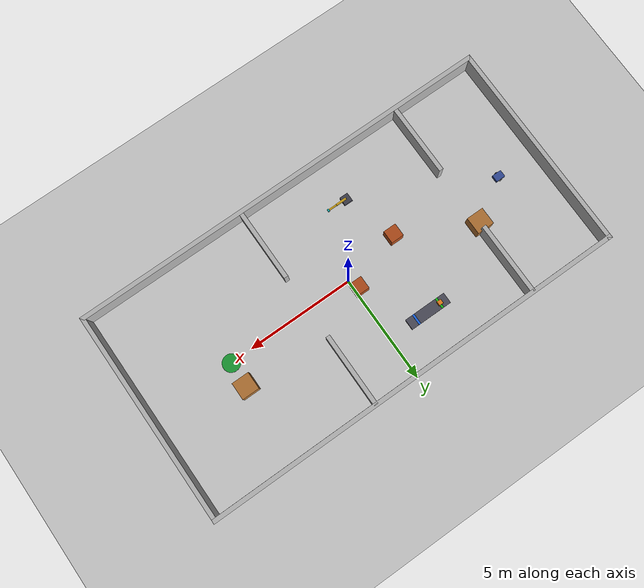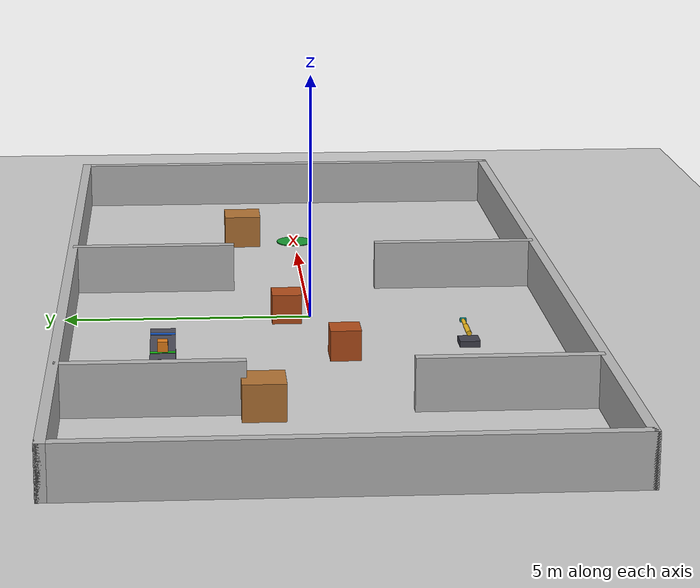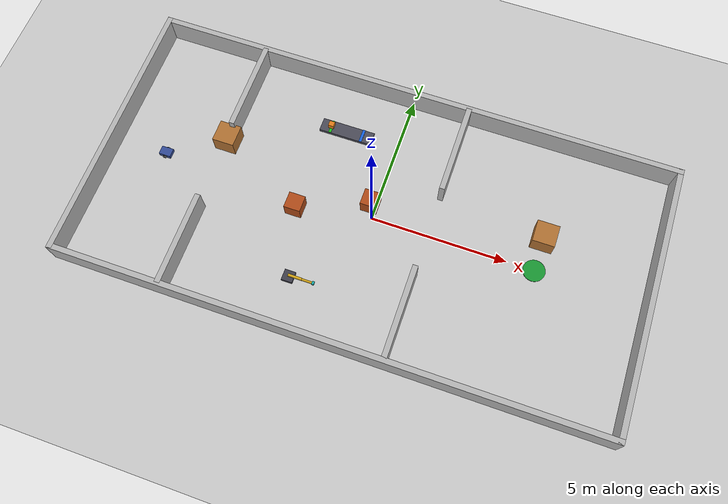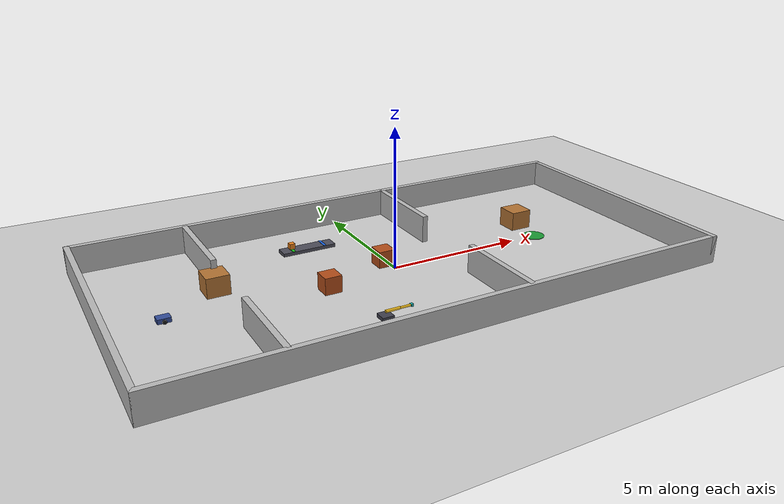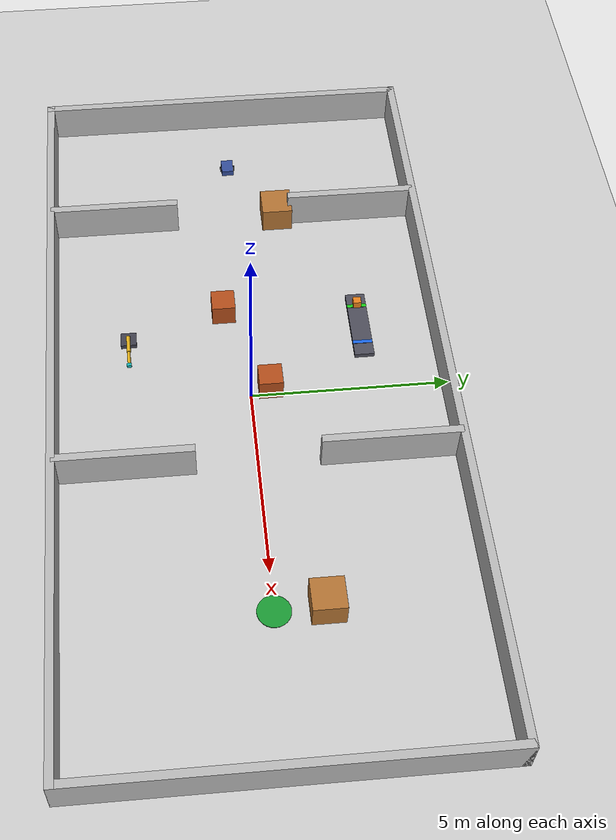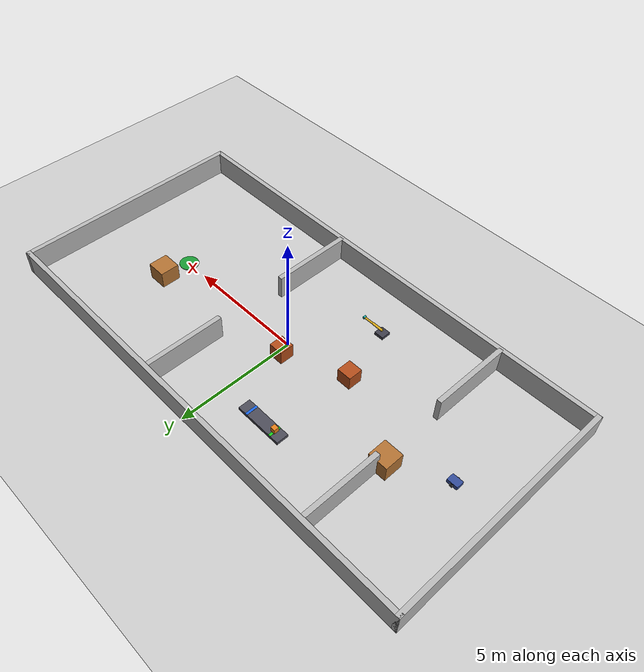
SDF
<?xml version="1.0" ?>
<sdf version="1.10">
  <world name="kern_workspace">
    <physics name="1ms" type="ignored">
      <max_step_size>0.001</max_step_size>
      <real_time_factor>1.0</real_time_factor>
    </physics>

    <plugin filename="gz-sim-physics-system" name="gz::sim::systems::Physics"/>
    <plugin filename="gz-sim-user-commands-system" name="gz::sim::systems::UserCommands"/>
    <plugin filename="gz-sim-scene-broadcaster-system" name="gz::sim::systems::SceneBroadcaster"/>
    <plugin filename="gz-sim-sensors-system" name="gz::sim::systems::Sensors">
      <render_engine>ogre2</render_engine>
    </plugin>

    <light type="directional" name="sun">
      <cast_shadows>true</cast_shadows>
      <pose>0 0 10 0 0 0</pose>
      <diffuse>0.8 0.8 0.8 1</diffuse>
      <specular>0.2 0.2 0.2 1</specular>
      <direction>-0.5 0.1 -0.9</direction>
    </light>

    <model name="ground_plane">
      <static>true</static>
      <link name="link">
        <collision name="collision">
          <geometry><plane><normal>0 0 1</normal><size>100 100</size></plane></geometry>
        </collision>
        <visual name="visual">
          <geometry><plane><normal>0 0 1</normal><size>100 100</size></plane></geometry>
          <material>
            <ambient>0.8 0.8 0.8 1</ambient>
            <diffuse>0.8 0.8 0.8 1</diffuse>
          </material>
        </visual>
      </link>
    </model>

    <!-- Perimeter. Each wall is 0.2 m thick and 1 m tall. -->
    <model name="wall_south">
      <static>true</static>
      <pose>0 -4.9 0.5 0 0 0</pose>
      <link name="link">
        <collision name="collision"><geometry><box><size>20 0.2 1</size></box></geometry></collision>
        <visual name="visual"><geometry><box><size>20 0.2 1</size></box></geometry></visual>
      </link>
    </model>
    <model name="wall_north">
      <static>true</static>
      <pose>0 4.9 0.5 0 0 0</pose>
      <link name="link">
        <collision name="collision"><geometry><box><size>20 0.2 1</size></box></geometry></collision>
        <visual name="visual"><geometry><box><size>20 0.2 1</size></box></geometry></visual>
      </link>
    </model>
    <model name="wall_west">
      <static>true</static>
      <pose>-9.9 0 0.5 0 0 0</pose>
      <link name="link">
        <collision name="collision"><geometry><box><size>0.2 10 1</size></box></geometry></collision>
        <visual name="visual"><geometry><box><size>0.2 10 1</size></box></geometry></visual>
      </link>
    </model>
    <model name="wall_east">
      <static>true</static>
      <pose>9.9 0 0.5 0 0 0</pose>
      <link name="link">
        <collision name="collision"><geometry><box><size>0.2 10 1</size></box></geometry></collision>
        <visual name="visual"><geometry><box><size>0.2 10 1</size></box></geometry></visual>
      </link>
    </model>

    <!-- Corridor walls: a 3 m lane along y in [-1.5, +1.5], matching maps/generate_map.py. -->
    <model name="corridor_south_west">
      <static>true</static>
      <pose>-5.9 -3.2 0.5 0 0 0</pose>
      <link name="link">
        <collision name="collision"><geometry><box><size>0.2 3.4 1</size></box></geometry></collision>
        <visual name="visual"><geometry><box><size>0.2 3.4 1</size></box></geometry></visual>
      </link>
    </model>
    <model name="corridor_north_west">
      <static>true</static>
      <pose>-5.9 3.2 0.5 0 0 0</pose>
      <link name="link">
        <collision name="collision"><geometry><box><size>0.2 3.4 1</size></box></geometry></collision>
        <visual name="visual"><geometry><box><size>0.2 3.4 1</size></box></geometry></visual>
      </link>
    </model>
    <model name="corridor_south_east">
      <static>true</static>
      <pose>2.1 -3.2 0.5 0 0 0</pose>
      <link name="link">
        <collision name="collision"><geometry><box><size>0.2 3.4 1</size></box></geometry></collision>
        <visual name="visual"><geometry><box><size>0.2 3.4 1</size></box></geometry></visual>
      </link>
    </model>
    <model name="corridor_north_east">
      <static>true</static>
      <pose>2.1 3.2 0.5 0 0 0</pose>
      <link name="link">
        <collision name="collision"><geometry><box><size>0.2 3.4 1</size></box></geometry></collision>
        <visual name="visual"><geometry><box><size>0.2 3.4 1</size></box></geometry></visual>
      </link>
    </model>

    <!-- Two static obstacles inside the lane. -->
    <model name="obstacle_a">
      <static>true</static>
      <pose>-2.7 -0.5 0.3 0 0 0</pose>
      <link name="link">
        <collision name="collision"><geometry><box><size>0.6 0.6 0.6</size></box></geometry></collision>
        <visual name="visual">
          <geometry><box><size>0.6 0.6 0.6</size></box></geometry>
          <material><ambient>0.7 0.3 0.1 1</ambient><diffuse>0.7 0.3 0.1 1</diffuse></material>
        </visual>
      </link>
    </model>
    <model name="obstacle_b">
      <static>true</static>
      <pose>-0.2 0.5 0.3 0 0 0</pose>
      <link name="link">
        <collision name="collision"><geometry><box><size>0.6 0.6 0.6</size></box></geometry></collision>
        <visual name="visual">
          <geometry><box><size>0.6 0.6 0.6</size></box></geometry>
          <material><ambient>0.7 0.3 0.1 1</ambient><diffuse>0.7 0.3 0.1 1</diffuse></material>
        </visual>
      </link>
    </model>

    <!-- The destination the demo navigates to. Visual only. -->
    <model name="goal_marker">
      <static>true</static>
      <pose>6 0 0.01 0 0 0</pose>
      <link name="link">
        <visual name="visual">
          <geometry><cylinder><radius>0.4</radius><length>0.02</length></cylinder></geometry>
          <material><ambient>0.1 0.6 0.2 1</ambient><diffuse>0.1 0.6 0.2 1</diffuse></material>
        </visual>
      </link>
    </model>

    <include>
      <uri>model://kern_bot</uri>
      <pose>-8 0 0.1 0 0 0</pose>
    </include>

    <model name="conveyor_01">
      <pose>-2 3 0 0 0 0</pose>
      <link name="frame">
        <inertial>
          <mass>50</mass>
          <inertia><ixx>5</ixx><iyy>5</iyy><izz>5</izz><ixy>0</ixy><ixz>0</ixz><iyz>0</iyz></inertia>
        </inertial>
        <collision name="collision">
          <geometry><box><size>2.0 0.5 0.2</size></box></geometry>
        </collision>
        <visual name="visual">
          <geometry><box><size>2.0 0.5 0.2</size></box></geometry>
          <material>
            <ambient>0.25 0.25 0.3 1</ambient>
            <diffuse>0.3 0.3 0.35 1</diffuse>
          </material>
        </visual>
        <visual name="station_a_mark">
          <pose>-0.6 0 0.11 0 0 0</pose>
          <geometry><box><size>0.1 0.5 0.01</size></box></geometry>
          <material><ambient>0.1 0.6 0.1 1</ambient><diffuse>0.1 0.8 0.1 1</diffuse></material>
        </visual>
        <visual name="station_b_mark">
          <pose>0.6 0 0.11 0 0 0</pose>
          <geometry><box><size>0.1 0.5 0.01</size></box></geometry>
          <material><ambient>0.1 0.3 0.7 1</ambient><diffuse>0.1 0.4 0.9 1</diffuse></material>
        </visual>
      </link>

      <link name="package">
        <pose>-0.6 0 0.25 0 0 0</pose>
        <inertial>
          <mass>1.0</mass>
          <inertia><ixx>0.01</ixx><iyy>0.01</iyy><izz>0.01</izz><ixy>0</ixy><ixz>0</ixz><iyz>0</iyz></inertia>
        </inertial>
        <collision name="collision">
          <geometry><box><size>0.2 0.2 0.2</size></box></geometry>
        </collision>
        <visual name="visual">
          <geometry><box><size>0.2 0.2 0.2</size></box></geometry>
          <material><ambient>0.7 0.4 0.1 1</ambient><diffuse>0.9 0.5 0.1 1</diffuse></material>
        </visual>
      </link>

      <!-- The only degree of freedom the machine has. Its limits are the belt;
           the adapter never commands outside them, and the joint could not
           honour it if it tried. -->
      <joint name="belt" type="prismatic">
        <parent>frame</parent>
        <child>package</child>
        <axis>
          <xyz>1 0 0</xyz>
          <limit><lower>0.0</lower><upper>1.2</upper><effort>200</effort><velocity>1.0</velocity></limit>
          <dynamics><damping>5.0</damping></dynamics>
        </axis>
      </joint>

      <plugin filename="gz-sim-joint-position-controller-system"
              name="gz::sim::systems::JointPositionController">
        <joint_name>belt</joint_name>
        <topic>/conveyor_01/belt_cmd</topic>
        <p_gain>80.0</p_gain>
        <i_gain>0.5</i_gain>
        <d_gain>12.0</d_gain>
        <cmd_max>200</cmd_max>
        <cmd_min>-200</cmd_min>
      </plugin>
      <plugin filename="gz-sim-joint-state-publisher-system"
              name="gz::sim::systems::JointStatePublisher">
        <topic>/conveyor_01/joint_state</topic>
        <joint_name>belt</joint_name>
      </plugin>
    </model>

    <model name="robotic_arm_01">
      <pose>-2 -3 0 0 0 0</pose>
      <link name="base">
        <inertial>
          <mass>30</mass>
          <inertia><ixx>2</ixx><iyy>2</iyy><izz>2</izz><ixy>0</ixy><ixz>0</ixz><iyz>0</iyz></inertia>
        </inertial>
        <collision name="collision">
          <geometry><box><size>0.4 0.4 0.2</size></box></geometry>
        </collision>
        <visual name="visual">
          <geometry><box><size>0.4 0.4 0.2</size></box></geometry>
          <material><ambient>0.2 0.2 0.25 1</ambient><diffuse>0.25 0.25 0.3 1</diffuse></material>
        </visual>
      </link>

      <link name="upper_arm">
        <pose>0 0 0.2 0 0 0</pose>
        <inertial>
          <mass>2</mass>
          <inertia><ixx>0.05</ixx><iyy>0.05</iyy><izz>0.01</izz><ixy>0</ixy><ixz>0</ixz><iyz>0</iyz></inertia>
        </inertial>
        <collision name="collision">
          <pose>0.25 0 0 0 1.5708 0</pose>
          <geometry><cylinder><radius>0.05</radius><length>0.5</length></cylinder></geometry>
        </collision>
        <visual name="visual">
          <pose>0.25 0 0 0 1.5708 0</pose>
          <geometry><cylinder><radius>0.05</radius><length>0.5</length></cylinder></geometry>
          <material><ambient>0.6 0.5 0.1 1</ambient><diffuse>0.9 0.7 0.1 1</diffuse></material>
        </visual>
      </link>

      <link name="forearm">
        <pose>0.5 0 0.2 0 0 0</pose>
        <inertial>
          <mass>1</mass>
          <inertia><ixx>0.02</ixx><iyy>0.02</iyy><izz>0.005</izz><ixy>0</ixy><ixz>0</ixz><iyz>0</iyz></inertia>
        </inertial>
        <collision name="collision">
          <pose>0.2 0 0 0 1.5708 0</pose>
          <geometry><cylinder><radius>0.04</radius><length>0.4</length></cylinder></geometry>
        </collision>
        <visual name="visual">
          <pose>0.2 0 0 0 1.5708 0</pose>
          <geometry><cylinder><radius>0.04</radius><length>0.4</length></cylinder></geometry>
          <material><ambient>0.6 0.5 0.1 1</ambient><diffuse>0.9 0.7 0.1 1</diffuse></material>
        </visual>
        <visual name="tool">
          <pose>0.42 0 0 0 0 0</pose>
          <geometry><box><size>0.08 0.12 0.08</size></box></geometry>
          <material><ambient>0.1 0.5 0.5 1</ambient><diffuse>0.1 0.7 0.7 1</diffuse></material>
        </visual>
      </link>

      <joint name="shoulder" type="revolute">
        <parent>base</parent>
        <child>upper_arm</child>
        <axis>
          <xyz>0 1 0</xyz>
          <limit><lower>-1.4</lower><upper>1.4</upper><effort>200</effort><velocity>1.5</velocity></limit>
          <dynamics><damping>2.0</damping></dynamics>
        </axis>
      </joint>

      <joint name="elbow" type="revolute">
        <parent>upper_arm</parent>
        <child>forearm</child>
        <axis>
          <xyz>0 1 0</xyz>
          <limit><lower>-1.4</lower><upper>1.4</upper><effort>150</effort><velocity>1.5</velocity></limit>
          <dynamics><damping>1.5</damping></dynamics>
        </axis>
      </joint>

      <plugin filename="gz-sim-joint-position-controller-system"
              name="gz::sim::systems::JointPositionController">
        <joint_name>shoulder</joint_name>
        <topic>/robotic_arm_01/shoulder_cmd</topic>
        <p_gain>600.0</p_gain>
        <i_gain>40.0</i_gain>
        <d_gain>60.0</d_gain>
        <i_max>200</i_max>
        <i_min>-200</i_min>
        <cmd_max>400</cmd_max>
        <cmd_min>-400</cmd_min>
      </plugin>
      <plugin filename="gz-sim-joint-position-controller-system"
              name="gz::sim::systems::JointPositionController">
        <joint_name>elbow</joint_name>
        <topic>/robotic_arm_01/elbow_cmd</topic>
        <p_gain>300.0</p_gain>
        <i_gain>20.0</i_gain>
        <d_gain>30.0</d_gain>
        <i_max>150</i_max>
        <i_min>-150</i_min>
        <cmd_max>300</cmd_max>
        <cmd_min>-300</cmd_min>
      </plugin>
      <plugin filename="gz-sim-joint-state-publisher-system"
              name="gz::sim::systems::JointStatePublisher">
        <topic>/robotic_arm_01/joint_state</topic>
        <joint_name>shoulder</joint_name>
        <joint_name>elbow</joint_name>
      </plugin>
    </model>

    <!-- Cafe tables, so the delivery destination is a place and not a number. -->
    <model name="table_3">
      <static>true</static>
      <pose>6 1.2 0.35 0 0 0</pose>
      <link name="link">
        <collision name="collision"><geometry><box><size>0.8 0.8 0.7</size></box></geometry></collision>
        <visual name="visual">
          <geometry><box><size>0.8 0.8 0.7</size></box></geometry>
          <material><ambient>0.5 0.3 0.15 1</ambient><diffuse>0.7 0.45 0.2 1</diffuse></material>
        </visual>
      </link>
    </model>
    <model name="table_1">
      <static>true</static>
      <pose>-6 1.2 0.35 0 0 0</pose>
      <link name="link">
        <collision name="collision"><geometry><box><size>0.8 0.8 0.7</size></box></geometry></collision>
        <visual name="visual">
          <geometry><box><size>0.8 0.8 0.7</size></box></geometry>
          <material><ambient>0.5 0.3 0.15 1</ambient><diffuse>0.7 0.45 0.2 1</diffuse></material>
        </visual>
      </link>
    </model>

  </world>
</sdf>

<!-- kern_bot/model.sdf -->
<!--
  Differential drive, odometry, TF, and a planar lidar: the four things Nav2
  needs and nothing else.
-->
<sdf version="1.10">
  <model name="kern_bot">
    <pose>0 0 0.1 0 0 0</pose>

    <link name="base_link">
      <inertial>
        <mass>8.0</mass>
        <inertia><ixx>0.12</ixx><iyy>0.12</iyy><izz>0.2</izz><ixy>0</ixy><ixz>0</ixz><iyz>0</iyz></inertia>
      </inertial>
      <collision name="collision">
        <geometry><box><size>0.44 0.32 0.16</size></box></geometry>
      </collision>
      <visual name="visual">
        <geometry><box><size>0.44 0.32 0.16</size></box></geometry>
        <material><ambient>0.2 0.3 0.6 1</ambient><diffuse>0.2 0.3 0.6 1</diffuse></material>
      </visual>

      <sensor name="lidar" type="gpu_lidar">
        <pose>0.16 0 0.12 0 0 0</pose>
        <topic>scan</topic>
        <update_rate>10</update_rate>
        <always_on>true</always_on>
        <visualize>true</visualize>
        <lidar>
          <scan>
            <horizontal>
              <samples>360</samples>
              <resolution>1</resolution>
              <min_angle>-3.14159</min_angle>
              <max_angle>3.14159</max_angle>
            </horizontal>
          </scan>
          <range><min>0.12</min><max>12.0</max><resolution>0.01</resolution></range>
        </lidar>
      </sensor>
    </link>

    <link name="wheel_left">
      <pose>0 0.18 -0.03 -1.5707 0 0</pose>
      <inertial>
        <mass>0.6</mass>
        <inertia><ixx>0.002</ixx><iyy>0.002</iyy><izz>0.003</izz><ixy>0</ixy><ixz>0</ixz><iyz>0</iyz></inertia>
      </inertial>
      <collision name="collision">
        <geometry><cylinder><radius>0.07</radius><length>0.04</length></cylinder></geometry>
        <surface><friction><ode><mu>1.2</mu><mu2>1.2</mu2></ode></friction></surface>
      </collision>
      <visual name="visual">
        <geometry><cylinder><radius>0.07</radius><length>0.04</length></cylinder></geometry>
        <material><ambient>0.1 0.1 0.1 1</ambient><diffuse>0.1 0.1 0.1 1</diffuse></material>
      </visual>
    </link>

    <link name="wheel_right">
      <pose>0 -0.18 -0.03 -1.5707 0 0</pose>
      <inertial>
        <mass>0.6</mass>
        <inertia><ixx>0.002</ixx><iyy>0.002</iyy><izz>0.003</izz><ixy>0</ixy><ixz>0</ixz><iyz>0</iyz></inertia>
      </inertial>
      <collision name="collision">
        <geometry><cylinder><radius>0.07</radius><length>0.04</length></cylinder></geometry>
        <surface><friction><ode><mu>1.2</mu><mu2>1.2</mu2></ode></friction></surface>
      </collision>
      <visual name="visual">
        <geometry><cylinder><radius>0.07</radius><length>0.04</length></cylinder></geometry>
        <material><ambient>0.1 0.1 0.1 1</ambient><diffuse>0.1 0.1 0.1 1</diffuse></material>
      </visual>
    </link>

    <link name="caster">
      <pose>-0.17 0 -0.06 0 0 0</pose>
      <inertial>
        <mass>0.2</mass>
        <inertia><ixx>0.0002</ixx><iyy>0.0002</iyy><izz>0.0002</izz><ixy>0</ixy><ixz>0</ixz><iyz>0</iyz></inertia>
      </inertial>
      <collision name="collision">
        <geometry><sphere><radius>0.04</radius></sphere></geometry>
        <surface><friction><ode><mu>0.05</mu><mu2>0.05</mu2></ode></friction></surface>
      </collision>
      <visual name="visual">
        <geometry><sphere><radius>0.04</radius></sphere></geometry>
      </visual>
    </link>

    <joint name="wheel_left_joint" type="revolute">
      <parent>base_link</parent>
      <child>wheel_left</child>
      <axis><xyz>0 0 1</xyz><limit><lower>-1e16</lower><upper>1e16</upper></limit></axis>
    </joint>
    <joint name="wheel_right_joint" type="revolute">
      <parent>base_link</parent>
      <child>wheel_right</child>
      <axis><xyz>0 0 1</xyz><limit><lower>-1e16</lower><upper>1e16</upper></limit></axis>
    </joint>
    <joint name="caster_joint" type="ball">
      <parent>base_link</parent>
      <child>caster</child>
    </joint>

    <plugin filename="gz-sim-diff-drive-system" name="gz::sim::systems::DiffDrive">
      <left_joint>wheel_left_joint</left_joint>
      <right_joint>wheel_right_joint</right_joint>
      <wheel_separation>0.36</wheel_separation>
      <wheel_radius>0.07</wheel_radius>
      <topic>cmd_vel</topic>
      <odom_topic>odom</odom_topic>
      <frame_id>odom</frame_id>
      <child_frame_id>base_link</child_frame_id>
      <odom_publish_frequency>30</odom_publish_frequency>
      <tf_topic>/tf</tf_topic>
      <max_linear_acceleration>1.0</max_linear_acceleration>
      <min_linear_acceleration>-1.0</min_linear_acceleration>
    </plugin>

    <plugin filename="gz-sim-joint-state-publisher-system"
            name="gz::sim::systems::JointStatePublisher">
      <topic>joint_states</topic>
    </plugin>
  </model>
</sdf>
